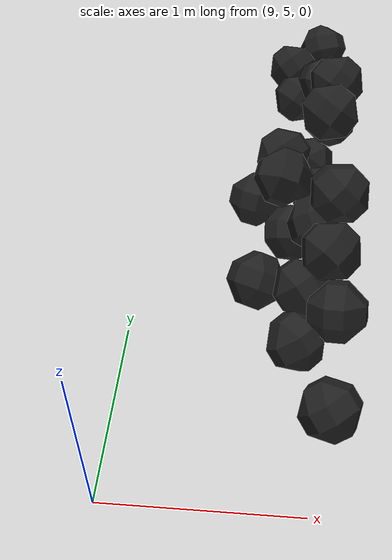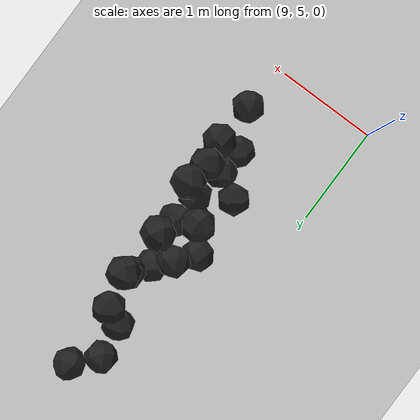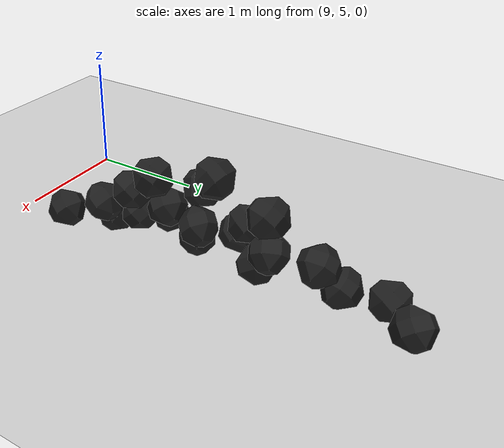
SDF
<sdf version="1.6">
 <world name="default">
  <model name="ground_plane">
   <static>1</static>
   <link name="link">
    <collision name="collision">
     <geometry><plane><normal>0 0 1</normal><size>100 100</size></plane></geometry>
     <surface><friction><ode><mu>100</mu><mu2>50</mu2></ode></friction></surface>
    </collision>
    <visual name="visual">
     <cast_shadows>0</cast_shadows>
     <geometry><plane><normal>0 0 1</normal><size>100 100</size></plane></geometry>
     <material>
      <script><uri>file://media/materials/scripts/gazebo.material</uri><name>Gazebo/Grey</name></script>
     </material>
    </visual>
   </link>
  </model>
  <model name="haoduomiantiaa_39">
   <link name="link_0">
    <inertial>
     <mass>0.2</mass>
     <inertia>
      <ixx>0.166667</ixx>
      <ixy>0</ixy>
      <ixz>0</ixz>
      <iyy>0.166667</iyy>
      <iyz>0</iyz>
      <izz>0.166667</izz>
     </inertia>
    </inertial>
    <visual name="visual">
     <geometry>
      <mesh>
       <uri>/home/oliver/catkin_ws/src/pudong_gazebo/world/stl/haoduomianti.stl</uri>
       <scale>1 1 1</scale>
      </mesh>
     </geometry>
     <material>
      <lighting>1</lighting>
      <script><uri>file://media/materials/scripts/gazebo.material</uri><name>Gazebo/Black</name></script>
      <shader type="pixel"><normal_map>__default__</normal_map></shader>
      <ambient>0.3 0.3 0.3 1</ambient>
      <diffuse>0.7 0.7 0.7 1</diffuse>
      <specular>0.01 0.01 0.01 1</specular>
      <emissive>0 0 0 1</emissive>
     </material>
    </visual>
    <collision name="collision">
     <geometry>
      <mesh>
       <uri>/home/oliver/catkin_ws/src/pudong_gazebo/world/stl/haoduomianti.stl</uri>
       <scale>1 1 1</scale>
      </mesh>
     </geometry>
     <surface>
      <friction>
       <ode><mu>1</mu><mu2>1</mu2><fdir1>0 0 0</fdir1><slip1>0</slip1><slip2>0</slip2></ode>
       <torsional>
        <coefficient>1</coefficient>
        <patch_radius>0</patch_radius>
        <surface_radius>0</surface_radius>
        <use_patch_radius>1</use_patch_radius>
        <ode><slip>0</slip></ode>
       </torsional>
      </friction>
      <bounce><restitution_coefficient>0</restitution_coefficient><threshold>1e+06</threshold></bounce>
      <contact>
       <collide_without_contact>0</collide_without_contact>
       <collide_without_contact_bitmask>1</collide_without_contact_bitmask>
       <collide_bitmask>1</collide_bitmask>
       <ode>
        <soft_cfm>0</soft_cfm>
        <soft_erp>0.2</soft_erp>
        <kp>1e+13</kp>
        <kd>1</kd>
        <max_vel>0.01</max_vel>
        <min_depth>0</min_depth>
       </ode>
       <bullet>
        <split_impulse>1</split_impulse>
        <split_impulse_penetration_threshold>-0.01</split_impulse_penetration_threshold>
        <soft_cfm>0</soft_cfm>
        <soft_erp>0.2</soft_erp>
        <kp>1e+13</kp>
        <kd>1</kd>
       </bullet>
      </contact>
     </surface>
    </collision>
   </link>
   <static>0</static>
   <pose>9.86405 6.10061 0.01397 0.733079 -0.285396 0.631794</pose>
  </model>
  <model name="haoduomiantiaa_45">
   <link name="link_0">
    <inertial>
     <mass>0.2</mass>
     <inertia>
      <ixx>0.166667</ixx>
      <ixy>0</ixy>
      <ixz>0</ixz>
      <iyy>0.166667</iyy>
      <iyz>0</iyz>
      <izz>0.166667</izz>
     </inertia>
    </inertial>
    <visual name="visual">
     <geometry>
      <mesh>
       <uri>/home/oliver/catkin_ws/src/pudong_gazebo/world/stl/haoduomianti.stl</uri>
       <scale>1 1 1</scale>
      </mesh>
     </geometry>
     <material>
      <lighting>1</lighting>
      <script><uri>file://media/materials/scripts/gazebo.material</uri><name>Gazebo/Black</name></script>
      <shader type="pixel"><normal_map>__default__</normal_map></shader>
      <ambient>0.3 0.3 0.3 1</ambient>
      <diffuse>0.7 0.7 0.7 1</diffuse>
      <specular>0.01 0.01 0.01 1</specular>
      <emissive>0 0 0 1</emissive>
     </material>
    </visual>
    <collision name="collision">
     <geometry>
      <mesh>
       <uri>/home/oliver/catkin_ws/src/pudong_gazebo/world/stl/haoduomianti.stl</uri>
       <scale>1 1 1</scale>
      </mesh>
     </geometry>
     <surface>
      <friction>
       <ode><mu>1</mu><mu2>1</mu2><fdir1>0 0 0</fdir1><slip1>0</slip1><slip2>0</slip2></ode>
       <torsional>
        <coefficient>1</coefficient>
        <patch_radius>0</patch_radius>
        <surface_radius>0</surface_radius>
        <use_patch_radius>1</use_patch_radius>
        <ode><slip>0</slip></ode>
       </torsional>
      </friction>
      <bounce><restitution_coefficient>0</restitution_coefficient><threshold>1e+06</threshold></bounce>
      <contact>
       <collide_without_contact>0</collide_without_contact>
       <collide_without_contact_bitmask>1</collide_without_contact_bitmask>
       <collide_bitmask>1</collide_bitmask>
       <ode>
        <soft_cfm>0</soft_cfm>
        <soft_erp>0.2</soft_erp>
        <kp>1e+13</kp>
        <kd>1</kd>
        <max_vel>0.01</max_vel>
        <min_depth>0</min_depth>
       </ode>
       <bullet>
        <split_impulse>1</split_impulse>
        <split_impulse_penetration_threshold>-0.01</split_impulse_penetration_threshold>
        <soft_cfm>0</soft_cfm>
        <soft_erp>0.2</soft_erp>
        <kp>1e+13</kp>
        <kd>1</kd>
       </bullet>
      </contact>
     </surface>
    </collision>
   </link>
   <static>0</static>
   <pose>10.0047 6.00648 -0.071473 -0.000701 -0.785178 2.42851</pose>
  </model>
  <model name="haoduomiantiaa_49">
   <link name="link_0">
    <inertial>
     <mass>0.2</mass>
     <inertia>
      <ixx>0.166667</ixx>
      <ixy>0</ixy>
      <ixz>0</ixz>
      <iyy>0.166667</iyy>
      <iyz>0</iyz>
      <izz>0.166667</izz>
     </inertia>
    </inertial>
    <visual name="visual">
     <geometry>
      <mesh>
       <uri>/home/oliver/catkin_ws/src/pudong_gazebo/world/stl/haoduomianti.stl</uri>
       <scale>1 1 1</scale>
      </mesh>
     </geometry>
     <material>
      <lighting>1</lighting>
      <script><uri>file://media/materials/scripts/gazebo.material</uri><name>Gazebo/Black</name></script>
      <shader type="pixel"><normal_map>__default__</normal_map></shader>
      <ambient>0.3 0.3 0.3 1</ambient>
      <diffuse>0.7 0.7 0.7 1</diffuse>
      <specular>0.01 0.01 0.01 1</specular>
      <emissive>0 0 0 1</emissive>
     </material>
    </visual>
    <collision name="collision">
     <geometry>
      <mesh>
       <uri>/home/oliver/catkin_ws/src/pudong_gazebo/world/stl/haoduomianti.stl</uri>
       <scale>1 1 1</scale>
      </mesh>
     </geometry>
     <surface>
      <friction>
       <ode><mu>1</mu><mu2>1</mu2><fdir1>0 0 0</fdir1><slip1>0</slip1><slip2>0</slip2></ode>
       <torsional>
        <coefficient>1</coefficient>
        <patch_radius>0</patch_radius>
        <surface_radius>0</surface_radius>
        <use_patch_radius>1</use_patch_radius>
        <ode><slip>0</slip></ode>
       </torsional>
      </friction>
      <bounce><restitution_coefficient>0</restitution_coefficient><threshold>1e+06</threshold></bounce>
      <contact>
       <collide_without_contact>0</collide_without_contact>
       <collide_without_contact_bitmask>1</collide_without_contact_bitmask>
       <collide_bitmask>1</collide_bitmask>
       <ode>
        <soft_cfm>0</soft_cfm>
        <soft_erp>0.2</soft_erp>
        <kp>1e+13</kp>
        <kd>1</kd>
        <max_vel>0.01</max_vel>
        <min_depth>0</min_depth>
       </ode>
       <bullet>
        <split_impulse>1</split_impulse>
        <split_impulse_penetration_threshold>-0.01</split_impulse_penetration_threshold>
        <soft_cfm>0</soft_cfm>
        <soft_erp>0.2</soft_erp>
        <kp>1e+13</kp>
        <kd>1</kd>
       </bullet>
      </contact>
     </surface>
    </collision>
   </link>
   <static>0</static>
   <pose>9.84175 6.66025 -0.114808 0.802266 -0.623145 -0.504268</pose>
  </model>
  <model name="haoduomiantiaa_53">
   <link name="link_0">
    <inertial>
     <mass>0.2</mass>
     <inertia>
      <ixx>0.166667</ixx>
      <ixy>0</ixy>
      <ixz>0</ixz>
      <iyy>0.166667</iyy>
      <iyz>0</iyz>
      <izz>0.166667</izz>
     </inertia>
    </inertial>
    <visual name="visual">
     <geometry>
      <mesh>
       <uri>/home/oliver/catkin_ws/src/pudong_gazebo/world/stl/haoduomianti.stl</uri>
       <scale>1 1 1</scale>
      </mesh>
     </geometry>
     <material>
      <lighting>1</lighting>
      <script><uri>file://media/materials/scripts/gazebo.material</uri><name>Gazebo/Black</name></script>
      <shader type="pixel"><normal_map>__default__</normal_map></shader>
      <ambient>0.3 0.3 0.3 1</ambient>
      <diffuse>0.7 0.7 0.7 1</diffuse>
      <specular>0.01 0.01 0.01 1</specular>
      <emissive>0 0 0 1</emissive>
     </material>
    </visual>
    <collision name="collision">
     <geometry>
      <mesh>
       <uri>/home/oliver/catkin_ws/src/pudong_gazebo/world/stl/haoduomianti.stl</uri>
       <scale>1 1 1</scale>
      </mesh>
     </geometry>
     <surface>
      <friction>
       <ode><mu>1</mu><mu2>1</mu2><fdir1>0 0 0</fdir1><slip1>0</slip1><slip2>0</slip2></ode>
       <torsional>
        <coefficient>1</coefficient>
        <patch_radius>0</patch_radius>
        <surface_radius>0</surface_radius>
        <use_patch_radius>1</use_patch_radius>
        <ode><slip>0</slip></ode>
       </torsional>
      </friction>
      <bounce><restitution_coefficient>0</restitution_coefficient><threshold>1e+06</threshold></bounce>
      <contact>
       <collide_without_contact>0</collide_without_contact>
       <collide_without_contact_bitmask>1</collide_without_contact_bitmask>
       <collide_bitmask>1</collide_bitmask>
       <ode>
        <soft_cfm>0</soft_cfm>
        <soft_erp>0.2</soft_erp>
        <kp>1e+13</kp>
        <kd>1</kd>
        <max_vel>0.01</max_vel>
        <min_depth>0</min_depth>
       </ode>
       <bullet>
        <split_impulse>1</split_impulse>
        <split_impulse_penetration_threshold>-0.01</split_impulse_penetration_threshold>
        <soft_cfm>0</soft_cfm>
        <soft_erp>0.2</soft_erp>
        <kp>1e+13</kp>
        <kd>1</kd>
       </bullet>
      </contact>
     </surface>
    </collision>
   </link>
   <static>0</static>
   <pose>10.0005 7.15317 -0.078627 0.160967 -0.729959 0.633986</pose>
  </model>
  <model name="haoduomiantiaa_57">
   <link name="link_0">
    <inertial>
     <mass>0.2</mass>
     <inertia>
      <ixx>0.166667</ixx>
      <ixy>0</ixy>
      <ixz>0</ixz>
      <iyy>0.166667</iyy>
      <iyz>0</iyz>
      <izz>0.166667</izz>
     </inertia>
    </inertial>
    <visual name="visual">
     <geometry>
      <mesh>
       <uri>/home/oliver/catkin_ws/src/pudong_gazebo/world/stl/haoduomianti.stl</uri>
       <scale>1 1 1</scale>
      </mesh>
     </geometry>
     <material>
      <lighting>1</lighting>
      <script><uri>file://media/materials/scripts/gazebo.material</uri><name>Gazebo/Black</name></script>
      <shader type="pixel"><normal_map>__default__</normal_map></shader>
      <ambient>0.3 0.3 0.3 1</ambient>
      <diffuse>0.7 0.7 0.7 1</diffuse>
      <specular>0.01 0.01 0.01 1</specular>
      <emissive>0 0 0 1</emissive>
     </material>
    </visual>
    <collision name="collision">
     <geometry>
      <mesh>
       <uri>/home/oliver/catkin_ws/src/pudong_gazebo/world/stl/haoduomianti.stl</uri>
       <scale>1 1 1</scale>
      </mesh>
     </geometry>
     <surface>
      <friction>
       <ode><mu>1</mu><mu2>1</mu2><fdir1>0 0 0</fdir1><slip1>0</slip1><slip2>0</slip2></ode>
       <torsional>
        <coefficient>1</coefficient>
        <patch_radius>0</patch_radius>
        <surface_radius>0</surface_radius>
        <use_patch_radius>1</use_patch_radius>
        <ode><slip>0</slip></ode>
       </torsional>
      </friction>
      <bounce><restitution_coefficient>0</restitution_coefficient><threshold>1e+06</threshold></bounce>
      <contact>
       <collide_without_contact>0</collide_without_contact>
       <collide_without_contact_bitmask>1</collide_without_contact_bitmask>
       <collide_bitmask>1</collide_bitmask>
       <ode>
        <soft_cfm>0</soft_cfm>
        <soft_erp>0.2</soft_erp>
        <kp>1e+13</kp>
        <kd>1</kd>
        <max_vel>0.01</max_vel>
        <min_depth>0</min_depth>
       </ode>
       <bullet>
        <split_impulse>1</split_impulse>
        <split_impulse_penetration_threshold>-0.01</split_impulse_penetration_threshold>
        <soft_cfm>0</soft_cfm>
        <soft_erp>0.2</soft_erp>
        <kp>1e+13</kp>
        <kd>1</kd>
       </bullet>
      </contact>
     </surface>
    </collision>
   </link>
   <static>0</static>
   <pose>9.98243 6.47335 0.167355 0.788763 -0.61556 -2.19122</pose>
  </model>
  <model name="haoduomiantiaa_60">
   <link name="link_0">
    <inertial>
     <mass>0.2</mass>
     <inertia>
      <ixx>0.166667</ixx>
      <ixy>0</ixy>
      <ixz>0</ixz>
      <iyy>0.166667</iyy>
      <iyz>0</iyz>
      <izz>0.166667</izz>
     </inertia>
    </inertial>
    <visual name="visual">
     <geometry>
      <mesh>
       <uri>/home/oliver/catkin_ws/src/pudong_gazebo/world/stl/haoduomianti.stl</uri>
       <scale>1 1 1</scale>
      </mesh>
     </geometry>
     <material>
      <lighting>1</lighting>
      <script><uri>file://media/materials/scripts/gazebo.material</uri><name>Gazebo/Black</name></script>
      <shader type="pixel"><normal_map>__default__</normal_map></shader>
      <ambient>0.3 0.3 0.3 1</ambient>
      <diffuse>0.7 0.7 0.7 1</diffuse>
      <specular>0.01 0.01 0.01 1</specular>
      <emissive>0 0 0 1</emissive>
     </material>
    </visual>
    <collision name="collision">
     <geometry>
      <mesh>
       <uri>/home/oliver/catkin_ws/src/pudong_gazebo/world/stl/haoduomianti.stl</uri>
       <scale>1 1 1</scale>
      </mesh>
     </geometry>
     <surface>
      <friction>
       <ode><mu>1</mu><mu2>1</mu2><fdir1>0 0 0</fdir1><slip1>0</slip1><slip2>0</slip2></ode>
       <torsional>
        <coefficient>1</coefficient>
        <patch_radius>0</patch_radius>
        <surface_radius>0</surface_radius>
        <use_patch_radius>1</use_patch_radius>
        <ode><slip>0</slip></ode>
       </torsional>
      </friction>
      <bounce><restitution_coefficient>0</restitution_coefficient><threshold>1e+06</threshold></bounce>
      <contact>
       <collide_without_contact>0</collide_without_contact>
       <collide_without_contact_bitmask>1</collide_without_contact_bitmask>
       <collide_bitmask>1</collide_bitmask>
       <ode>
        <soft_cfm>0</soft_cfm>
        <soft_erp>0.2</soft_erp>
        <kp>1e+13</kp>
        <kd>1</kd>
        <max_vel>0.01</max_vel>
        <min_depth>0</min_depth>
       </ode>
       <bullet>
        <split_impulse>1</split_impulse>
        <split_impulse_penetration_threshold>-0.01</split_impulse_penetration_threshold>
        <soft_cfm>0</soft_cfm>
        <soft_erp>0.2</soft_erp>
        <kp>1e+13</kp>
        <kd>1</kd>
       </bullet>
      </contact>
     </surface>
    </collision>
   </link>
   <static>0</static>
   <pose>9.78435 6.89679 -0.059027 0.631202 1.2e-05 2.83159</pose>
  </model>
  <model name="haoduomiantiaa_65">
   <link name="link_0">
    <inertial>
     <mass>0.2</mass>
     <inertia>
      <ixx>0.166667</ixx>
      <ixy>0</ixy>
      <ixz>0</ixz>
      <iyy>0.166667</iyy>
      <iyz>0</iyz>
      <izz>0.166667</izz>
     </inertia>
    </inertial>
    <visual name="visual">
     <geometry>
      <mesh>
       <uri>/home/oliver/catkin_ws/src/pudong_gazebo/world/stl/haoduomianti.stl</uri>
       <scale>1 1 1</scale>
      </mesh>
     </geometry>
     <material>
      <lighting>1</lighting>
      <script><uri>file://media/materials/scripts/gazebo.material</uri><name>Gazebo/Black</name></script>
      <shader type="pixel"><normal_map>__default__</normal_map></shader>
      <ambient>0.3 0.3 0.3 1</ambient>
      <diffuse>0.7 0.7 0.7 1</diffuse>
      <specular>0.01 0.01 0.01 1</specular>
      <emissive>0 0 0 1</emissive>
     </material>
    </visual>
    <collision name="collision">
     <geometry>
      <mesh>
       <uri>/home/oliver/catkin_ws/src/pudong_gazebo/world/stl/haoduomianti.stl</uri>
       <scale>1 1 1</scale>
      </mesh>
     </geometry>
     <surface>
      <friction>
       <ode><mu>1</mu><mu2>1</mu2><fdir1>0 0 0</fdir1><slip1>0</slip1><slip2>0</slip2></ode>
       <torsional>
        <coefficient>1</coefficient>
        <patch_radius>0</patch_radius>
        <surface_radius>0</surface_radius>
        <use_patch_radius>1</use_patch_radius>
        <ode><slip>0</slip></ode>
       </torsional>
      </friction>
      <bounce><restitution_coefficient>0</restitution_coefficient><threshold>1e+06</threshold></bounce>
      <contact>
       <collide_without_contact>0</collide_without_contact>
       <collide_without_contact_bitmask>1</collide_without_contact_bitmask>
       <collide_bitmask>1</collide_bitmask>
       <ode>
        <soft_cfm>0</soft_cfm>
        <soft_erp>0.2</soft_erp>
        <kp>1e+13</kp>
        <kd>1</kd>
        <max_vel>0.01</max_vel>
        <min_depth>0</min_depth>
       </ode>
       <bullet>
        <split_impulse>1</split_impulse>
        <split_impulse_penetration_threshold>-0.01</split_impulse_penetration_threshold>
        <soft_cfm>0</soft_cfm>
        <soft_erp>0.2</soft_erp>
        <kp>1e+13</kp>
        <kd>1</kd>
       </bullet>
      </contact>
     </surface>
    </collision>
   </link>
   <static>0</static>
   <pose>10.048 7.37475 0.120858 0.648752 -0.672262 -0.424089</pose>
  </model>
  <model name="haoduomiantiaa_78">
   <link name="link_0">
    <inertial>
     <mass>0.2</mass>
     <inertia>
      <ixx>0.166667</ixx>
      <ixy>0</ixy>
      <ixz>0</ixz>
      <iyy>0.166667</iyy>
      <iyz>0</iyz>
      <izz>0.166667</izz>
     </inertia>
    </inertial>
    <visual name="visual">
     <geometry>
      <mesh>
       <uri>/home/oliver/catkin_ws/src/pudong_gazebo/world/stl/haoduomianti.stl</uri>
       <scale>1 1 1</scale>
      </mesh>
     </geometry>
     <material>
      <lighting>1</lighting>
      <script><uri>file://media/materials/scripts/gazebo.material</uri><name>Gazebo/Black</name></script>
      <shader type="pixel"><normal_map>__default__</normal_map></shader>
      <ambient>0.3 0.3 0.3 1</ambient>
      <diffuse>0.7 0.7 0.7 1</diffuse>
      <specular>0.01 0.01 0.01 1</specular>
      <emissive>0 0 0 1</emissive>
     </material>
    </visual>
    <collision name="collision">
     <geometry>
      <mesh>
       <uri>/home/oliver/catkin_ws/src/pudong_gazebo/world/stl/haoduomianti.stl</uri>
       <scale>1 1 1</scale>
      </mesh>
     </geometry>
     <surface>
      <friction>
       <ode><mu>1</mu><mu2>1</mu2><fdir1>0 0 0</fdir1><slip1>0</slip1><slip2>0</slip2></ode>
       <torsional>
        <coefficient>1</coefficient>
        <patch_radius>0</patch_radius>
        <surface_radius>0</surface_radius>
        <use_patch_radius>1</use_patch_radius>
        <ode><slip>0</slip></ode>
       </torsional>
      </friction>
      <bounce><restitution_coefficient>0</restitution_coefficient><threshold>1e+06</threshold></bounce>
      <contact>
       <collide_without_contact>0</collide_without_contact>
       <collide_without_contact_bitmask>1</collide_without_contact_bitmask>
       <collide_bitmask>1</collide_bitmask>
       <ode>
        <soft_cfm>0</soft_cfm>
        <soft_erp>0.2</soft_erp>
        <kp>1e+13</kp>
        <kd>1</kd>
        <max_vel>0.01</max_vel>
        <min_depth>0</min_depth>
       </ode>
       <bullet>
        <split_impulse>1</split_impulse>
        <split_impulse_penetration_threshold>-0.01</split_impulse_penetration_threshold>
        <soft_cfm>0</soft_cfm>
        <soft_erp>0.2</soft_erp>
        <kp>1e+13</kp>
        <kd>1</kd>
       </bullet>
      </contact>
     </surface>
    </collision>
   </link>
   <static>0</static>
   <pose>9.67654 6.28663 -0.114789 0.765663 -0.624508 1.20213</pose>
  </model>
  <model name="haoduomiantiaa_81">
   <link name="link_0">
    <inertial>
     <mass>0.2</mass>
     <inertia>
      <ixx>0.166667</ixx>
      <ixy>0</ixy>
      <ixz>0</ixz>
      <iyy>0.166667</iyy>
      <iyz>0</iyz>
      <izz>0.166667</izz>
     </inertia>
    </inertial>
    <visual name="visual">
     <geometry>
      <mesh>
       <uri>/home/oliver/catkin_ws/src/pudong_gazebo/world/stl/haoduomianti.stl</uri>
       <scale>1 1 1</scale>
      </mesh>
     </geometry>
     <material>
      <lighting>1</lighting>
      <script><uri>file://media/materials/scripts/gazebo.material</uri><name>Gazebo/Black</name></script>
      <shader type="pixel"><normal_map>__default__</normal_map></shader>
      <ambient>0.3 0.3 0.3 1</ambient>
      <diffuse>0.7 0.7 0.7 1</diffuse>
      <specular>0.01 0.01 0.01 1</specular>
      <emissive>0 0 0 1</emissive>
     </material>
    </visual>
    <collision name="collision">
     <geometry>
      <mesh>
       <uri>/home/oliver/catkin_ws/src/pudong_gazebo/world/stl/haoduomianti.stl</uri>
       <scale>1 1 1</scale>
      </mesh>
     </geometry>
     <surface>
      <friction>
       <ode><mu>1</mu><mu2>1</mu2><fdir1>0 0 0</fdir1><slip1>0</slip1><slip2>0</slip2></ode>
       <torsional>
        <coefficient>1</coefficient>
        <patch_radius>0</patch_radius>
        <surface_radius>0</surface_radius>
        <use_patch_radius>1</use_patch_radius>
        <ode><slip>0</slip></ode>
       </torsional>
      </friction>
      <bounce><restitution_coefficient>0</restitution_coefficient><threshold>1e+06</threshold></bounce>
      <contact>
       <collide_without_contact>0</collide_without_contact>
       <collide_without_contact_bitmask>1</collide_without_contact_bitmask>
       <collide_bitmask>1</collide_bitmask>
       <ode>
        <soft_cfm>0</soft_cfm>
        <soft_erp>0.2</soft_erp>
        <kp>1e+13</kp>
        <kd>1</kd>
        <max_vel>0.01</max_vel>
        <min_depth>0</min_depth>
       </ode>
       <bullet>
        <split_impulse>1</split_impulse>
        <split_impulse_penetration_threshold>-0.01</split_impulse_penetration_threshold>
        <soft_cfm>0</soft_cfm>
        <soft_erp>0.2</soft_erp>
        <kp>1e+13</kp>
        <kd>1</kd>
       </bullet>
      </contact>
     </surface>
    </collision>
   </link>
   <static>0</static>
   <pose>9.97082 6.80943 0.097359 0.911112 -0.471267 -0.337828</pose>
  </model>
  <model name="haoduomiantiaa_104">
   <link name="link_0">
    <inertial>
     <mass>0.2</mass>
     <inertia>
      <ixx>0.166667</ixx>
      <ixy>0</ixy>
      <ixz>0</ixz>
      <iyy>0.166667</iyy>
      <iyz>0</iyz>
      <izz>0.166667</izz>
     </inertia>
    </inertial>
    <visual name="visual">
     <geometry>
      <mesh>
       <uri>/home/oliver/catkin_ws/src/pudong_gazebo/world/stl/haoduomianti.stl</uri>
       <scale>1 1 1</scale>
      </mesh>
     </geometry>
     <material>
      <lighting>1</lighting>
      <script><uri>file://media/materials/scripts/gazebo.material</uri><name>Gazebo/Black</name></script>
      <shader type="pixel"><normal_map>__default__</normal_map></shader>
      <ambient>0.3 0.3 0.3 1</ambient>
      <diffuse>0.7 0.7 0.7 1</diffuse>
      <specular>0.01 0.01 0.01 1</specular>
      <emissive>0 0 0 1</emissive>
     </material>
    </visual>
    <collision name="collision">
     <geometry>
      <mesh>
       <uri>/home/oliver/catkin_ws/src/pudong_gazebo/world/stl/haoduomianti.stl</uri>
       <scale>1 1 1</scale>
      </mesh>
     </geometry>
     <surface>
      <friction>
       <ode><mu>1</mu><mu2>1</mu2><fdir1>0 0 0</fdir1><slip1>0</slip1><slip2>0</slip2></ode>
       <torsional>
        <coefficient>1</coefficient>
        <patch_radius>0</patch_radius>
        <surface_radius>0</surface_radius>
        <use_patch_radius>1</use_patch_radius>
        <ode><slip>0</slip></ode>
       </torsional>
      </friction>
      <bounce><restitution_coefficient>0</restitution_coefficient><threshold>1e+06</threshold></bounce>
      <contact>
       <collide_without_contact>0</collide_without_contact>
       <collide_without_contact_bitmask>1</collide_without_contact_bitmask>
       <collide_bitmask>1</collide_bitmask>
       <ode>
        <soft_cfm>0</soft_cfm>
        <soft_erp>0.2</soft_erp>
        <kp>1e+13</kp>
        <kd>1</kd>
        <max_vel>0.01</max_vel>
        <min_depth>0</min_depth>
       </ode>
       <bullet>
        <split_impulse>1</split_impulse>
        <split_impulse_penetration_threshold>-0.01</split_impulse_penetration_threshold>
        <soft_cfm>0</soft_cfm>
        <soft_erp>0.2</soft_erp>
        <kp>1e+13</kp>
        <kd>1</kd>
       </bullet>
      </contact>
     </surface>
    </collision>
   </link>
   <static>0</static>
   <pose>9.98475 5.98944 0.133204 1.36466 -0.969514 1.62578</pose>
  </model>
  <model name="haoduomiantiaa_120">
   <link name="link_0">
    <inertial>
     <mass>0.2</mass>
     <inertia>
      <ixx>0.166667</ixx>
      <ixy>0</ixy>
      <ixz>0</ixz>
      <iyy>0.166667</iyy>
      <iyz>0</iyz>
      <izz>0.166667</izz>
     </inertia>
    </inertial>
    <visual name="visual">
     <geometry>
      <mesh>
       <uri>/home/oliver/catkin_ws/src/pudong_gazebo/world/stl/haoduomianti.stl</uri>
       <scale>1 1 1</scale>
      </mesh>
     </geometry>
     <material>
      <lighting>1</lighting>
      <script><uri>file://media/materials/scripts/gazebo.material</uri><name>Gazebo/Black</name></script>
      <shader type="pixel"><normal_map>__default__</normal_map></shader>
      <ambient>0.3 0.3 0.3 1</ambient>
      <diffuse>0.7 0.7 0.7 1</diffuse>
      <specular>0.01 0.01 0.01 1</specular>
      <emissive>0 0 0 1</emissive>
     </material>
    </visual>
    <collision name="collision">
     <geometry>
      <mesh>
       <uri>/home/oliver/catkin_ws/src/pudong_gazebo/world/stl/haoduomianti.stl</uri>
       <scale>1 1 1</scale>
      </mesh>
     </geometry>
     <surface>
      <friction>
       <ode><mu>1</mu><mu2>1</mu2><fdir1>0 0 0</fdir1><slip1>0</slip1><slip2>0</slip2></ode>
       <torsional>
        <coefficient>1</coefficient>
        <patch_radius>0</patch_radius>
        <surface_radius>0</surface_radius>
        <use_patch_radius>1</use_patch_radius>
        <ode><slip>0</slip></ode>
       </torsional>
      </friction>
      <bounce><restitution_coefficient>0</restitution_coefficient><threshold>1e+06</threshold></bounce>
      <contact>
       <collide_without_contact>0</collide_without_contact>
       <collide_without_contact_bitmask>1</collide_without_contact_bitmask>
       <collide_bitmask>1</collide_bitmask>
       <ode>
        <soft_cfm>0</soft_cfm>
        <soft_erp>0.2</soft_erp>
        <kp>1e+13</kp>
        <kd>1</kd>
        <max_vel>0.01</max_vel>
        <min_depth>0</min_depth>
       </ode>
       <bullet>
        <split_impulse>1</split_impulse>
        <split_impulse_penetration_threshold>-0.01</split_impulse_penetration_threshold>
        <soft_cfm>0</soft_cfm>
        <soft_erp>0.2</soft_erp>
        <kp>1e+13</kp>
        <kd>1</kd>
       </bullet>
      </contact>
     </surface>
    </collision>
   </link>
   <static>0</static>
   <pose>9.84356 7.89375 -0.115497 0.784731 -0.615792 0.816334</pose>
  </model>
  <model name="haoduomiantiaa_138">
   <link name="link_0">
    <inertial>
     <mass>0.2</mass>
     <inertia>
      <ixx>0.166667</ixx>
      <ixy>0</ixy>
      <ixz>0</ixz>
      <iyy>0.166667</iyy>
      <iyz>0</iyz>
      <izz>0.166667</izz>
     </inertia>
    </inertial>
    <visual name="visual">
     <geometry>
      <mesh>
       <uri>/home/oliver/catkin_ws/src/pudong_gazebo/world/stl/haoduomianti.stl</uri>
       <scale>1 1 1</scale>
      </mesh>
     </geometry>
     <material>
      <lighting>1</lighting>
      <script><uri>file://media/materials/scripts/gazebo.material</uri><name>Gazebo/Black</name></script>
      <shader type="pixel"><normal_map>__default__</normal_map></shader>
      <ambient>0.3 0.3 0.3 1</ambient>
      <diffuse>0.7 0.7 0.7 1</diffuse>
      <specular>0.01 0.01 0.01 1</specular>
      <emissive>0 0 0 1</emissive>
     </material>
    </visual>
    <collision name="collision">
     <geometry>
      <mesh>
       <uri>/home/oliver/catkin_ws/src/pudong_gazebo/world/stl/haoduomianti.stl</uri>
       <scale>1 1 1</scale>
      </mesh>
     </geometry>
     <surface>
      <friction>
       <ode><mu>1</mu><mu2>1</mu2><fdir1>0 0 0</fdir1><slip1>0</slip1><slip2>0</slip2></ode>
       <torsional>
        <coefficient>1</coefficient>
        <patch_radius>0</patch_radius>
        <surface_radius>0</surface_radius>
        <use_patch_radius>1</use_patch_radius>
        <ode><slip>0</slip></ode>
       </torsional>
      </friction>
      <bounce><restitution_coefficient>0</restitution_coefficient><threshold>1e+06</threshold></bounce>
      <contact>
       <collide_without_contact>0</collide_without_contact>
       <collide_without_contact_bitmask>1</collide_without_contact_bitmask>
       <collide_bitmask>1</collide_bitmask>
       <ode>
        <soft_cfm>0</soft_cfm>
        <soft_erp>0.2</soft_erp>
        <kp>1e+13</kp>
        <kd>1</kd>
        <max_vel>0.01</max_vel>
        <min_depth>0</min_depth>
       </ode>
       <bullet>
        <split_impulse>1</split_impulse>
        <split_impulse_penetration_threshold>-0.01</split_impulse_penetration_threshold>
        <soft_cfm>0</soft_cfm>
        <soft_erp>0.2</soft_erp>
        <kp>1e+13</kp>
        <kd>1</kd>
       </bullet>
      </contact>
     </surface>
    </collision>
   </link>
   <static>0</static>
   <pose>9.76282 7.07838 0.106078 0.833617 -0.658461 2.41472</pose>
  </model>
  <model name="haoduomiantiaa_141">
   <link name="link_0">
    <inertial>
     <mass>0.2</mass>
     <inertia>
      <ixx>0.166667</ixx>
      <ixy>0</ixy>
      <ixz>0</ixz>
      <iyy>0.166667</iyy>
      <iyz>0</iyz>
      <izz>0.166667</izz>
     </inertia>
    </inertial>
    <visual name="visual">
     <geometry>
      <mesh>
       <uri>/home/oliver/catkin_ws/src/pudong_gazebo/world/stl/haoduomianti.stl</uri>
       <scale>1 1 1</scale>
      </mesh>
     </geometry>
     <material>
      <lighting>1</lighting>
      <script><uri>file://media/materials/scripts/gazebo.material</uri><name>Gazebo/Black</name></script>
      <shader type="pixel"><normal_map>__default__</normal_map></shader>
      <ambient>0.3 0.3 0.3 1</ambient>
      <diffuse>0.7 0.7 0.7 1</diffuse>
      <specular>0.01 0.01 0.01 1</specular>
      <emissive>0 0 0 1</emissive>
     </material>
    </visual>
    <collision name="collision">
     <geometry>
      <mesh>
       <uri>/home/oliver/catkin_ws/src/pudong_gazebo/world/stl/haoduomianti.stl</uri>
       <scale>1 1 1</scale>
      </mesh>
     </geometry>
     <surface>
      <friction>
       <ode><mu>1</mu><mu2>1</mu2><fdir1>0 0 0</fdir1><slip1>0</slip1><slip2>0</slip2></ode>
       <torsional>
        <coefficient>1</coefficient>
        <patch_radius>0</patch_radius>
        <surface_radius>0</surface_radius>
        <use_patch_radius>1</use_patch_radius>
        <ode><slip>0</slip></ode>
       </torsional>
      </friction>
      <bounce><restitution_coefficient>0</restitution_coefficient><threshold>1e+06</threshold></bounce>
      <contact>
       <collide_without_contact>0</collide_without_contact>
       <collide_without_contact_bitmask>1</collide_without_contact_bitmask>
       <collide_bitmask>1</collide_bitmask>
       <ode>
        <soft_cfm>0</soft_cfm>
        <soft_erp>0.2</soft_erp>
        <kp>1e+13</kp>
        <kd>1</kd>
        <max_vel>0.01</max_vel>
        <min_depth>0</min_depth>
       </ode>
       <bullet>
        <split_impulse>1</split_impulse>
        <split_impulse_penetration_threshold>-0.01</split_impulse_penetration_threshold>
        <soft_cfm>0</soft_cfm>
        <soft_erp>0.2</soft_erp>
        <kp>1e+13</kp>
        <kd>1</kd>
       </bullet>
      </contact>
     </surface>
    </collision>
   </link>
   <static>0</static>
   <pose>9.79047 8.23765 -0.121883 0.786441 -0.615332 2.50362</pose>
  </model>
  <model name="haoduomiantiaa_151">
   <link name="link_0">
    <inertial>
     <mass>0.2</mass>
     <inertia>
      <ixx>0.166667</ixx>
      <ixy>0</ixy>
      <ixz>0</ixz>
      <iyy>0.166667</iyy>
      <iyz>0</iyz>
      <izz>0.166667</izz>
     </inertia>
    </inertial>
    <visual name="visual">
     <geometry>
      <mesh>
       <uri>/home/oliver/catkin_ws/src/pudong_gazebo/world/stl/haoduomianti.stl</uri>
       <scale>1 1 1</scale>
      </mesh>
     </geometry>
     <material>
      <lighting>1</lighting>
      <script><uri>file://media/materials/scripts/gazebo.material</uri><name>Gazebo/Black</name></script>
      <shader type="pixel"><normal_map>__default__</normal_map></shader>
      <ambient>0.3 0.3 0.3 1</ambient>
      <diffuse>0.7 0.7 0.7 1</diffuse>
      <specular>0.01 0.01 0.01 1</specular>
      <emissive>0 0 0 1</emissive>
     </material>
    </visual>
    <collision name="collision">
     <geometry>
      <mesh>
       <uri>/home/oliver/catkin_ws/src/pudong_gazebo/world/stl/haoduomianti.stl</uri>
       <scale>1 1 1</scale>
      </mesh>
     </geometry>
     <surface>
      <friction>
       <ode><mu>1</mu><mu2>1</mu2><fdir1>0 0 0</fdir1><slip1>0</slip1><slip2>0</slip2></ode>
       <torsional>
        <coefficient>1</coefficient>
        <patch_radius>0</patch_radius>
        <surface_radius>0</surface_radius>
        <use_patch_radius>1</use_patch_radius>
        <ode><slip>0</slip></ode>
       </torsional>
      </friction>
      <bounce><restitution_coefficient>0</restitution_coefficient><threshold>1e+06</threshold></bounce>
      <contact>
       <collide_without_contact>0</collide_without_contact>
       <collide_without_contact_bitmask>1</collide_without_contact_bitmask>
       <collide_bitmask>1</collide_bitmask>
       <ode>
        <soft_cfm>0</soft_cfm>
        <soft_erp>0.2</soft_erp>
        <kp>1e+13</kp>
        <kd>1</kd>
        <max_vel>0.01</max_vel>
        <min_depth>0</min_depth>
       </ode>
       <bullet>
        <split_impulse>1</split_impulse>
        <split_impulse_penetration_threshold>-0.01</split_impulse_penetration_threshold>
        <soft_cfm>0</soft_cfm>
        <soft_erp>0.2</soft_erp>
        <kp>1e+13</kp>
        <kd>1</kd>
       </bullet>
      </contact>
     </surface>
    </collision>
   </link>
   <static>0</static>
   <pose>10.0884 5.49326 -0.114342 0.786959 -0.615812 -1.87983</pose>
  </model>
  <model name="haoduomiantiaa_156">
   <link name="link_0">
    <inertial>
     <mass>0.2</mass>
     <inertia>
      <ixx>0.166667</ixx>
      <ixy>0</ixy>
      <ixz>0</ixz>
      <iyy>0.166667</iyy>
      <iyz>0</iyz>
      <izz>0.166667</izz>
     </inertia>
    </inertial>
    <visual name="visual">
     <geometry>
      <mesh>
       <uri>/home/oliver/catkin_ws/src/pudong_gazebo/world/stl/haoduomianti.stl</uri>
       <scale>1 1 1</scale>
      </mesh>
     </geometry>
     <material>
      <lighting>1</lighting>
      <script><uri>file://media/materials/scripts/gazebo.material</uri><name>Gazebo/Black</name></script>
      <shader type="pixel"><normal_map>__default__</normal_map></shader>
      <ambient>0.3 0.3 0.3 1</ambient>
      <diffuse>0.7 0.7 0.7 1</diffuse>
      <specular>0.01 0.01 0.01 1</specular>
      <emissive>0 0 0 1</emissive>
     </material>
    </visual>
    <collision name="collision">
     <geometry>
      <mesh>
       <uri>/home/oliver/catkin_ws/src/pudong_gazebo/world/stl/haoduomianti.stl</uri>
       <scale>1 1 1</scale>
      </mesh>
     </geometry>
     <surface>
      <friction>
       <ode><mu>1</mu><mu2>1</mu2><fdir1>0 0 0</fdir1><slip1>0</slip1><slip2>0</slip2></ode>
       <torsional>
        <coefficient>1</coefficient>
        <patch_radius>0</patch_radius>
        <surface_radius>0</surface_radius>
        <use_patch_radius>1</use_patch_radius>
        <ode><slip>0</slip></ode>
       </torsional>
      </friction>
      <bounce><restitution_coefficient>0</restitution_coefficient><threshold>1e+06</threshold></bounce>
      <contact>
       <collide_without_contact>0</collide_without_contact>
       <collide_without_contact_bitmask>1</collide_without_contact_bitmask>
       <collide_bitmask>1</collide_bitmask>
       <ode>
        <soft_cfm>0</soft_cfm>
        <soft_erp>0.2</soft_erp>
        <kp>1e+13</kp>
        <kd>1</kd>
        <max_vel>0.01</max_vel>
        <min_depth>0</min_depth>
       </ode>
       <bullet>
        <split_impulse>1</split_impulse>
        <split_impulse_penetration_threshold>-0.01</split_impulse_penetration_threshold>
        <soft_cfm>0</soft_cfm>
        <soft_erp>0.2</soft_erp>
        <kp>1e+13</kp>
        <kd>1</kd>
       </bullet>
      </contact>
     </surface>
    </collision>
   </link>
   <static>0</static>
   <pose>10.0762 6.91921 0.570203 0.586961 -0.755084 0.682317</pose>
  </model>
  <model name="haoduomiantiaa_165">
   <link name="link_0">
    <inertial>
     <mass>0.2</mass>
     <inertia>
      <ixx>0.166667</ixx>
      <ixy>0</ixy>
      <ixz>0</ixz>
      <iyy>0.166667</iyy>
      <iyz>0</iyz>
      <izz>0.166667</izz>
     </inertia>
    </inertial>
    <visual name="visual">
     <geometry>
      <mesh>
       <uri>/home/oliver/catkin_ws/src/pudong_gazebo/world/stl/haoduomianti.stl</uri>
       <scale>1 1 1</scale>
      </mesh>
     </geometry>
     <material>
      <lighting>1</lighting>
      <script><uri>file://media/materials/scripts/gazebo.material</uri><name>Gazebo/Black</name></script>
      <shader type="pixel"><normal_map>__default__</normal_map></shader>
      <ambient>0.3 0.3 0.3 1</ambient>
      <diffuse>0.7 0.7 0.7 1</diffuse>
      <specular>0.01 0.01 0.01 1</specular>
      <emissive>0 0 0 1</emissive>
     </material>
    </visual>
    <collision name="collision">
     <geometry>
      <mesh>
       <uri>/home/oliver/catkin_ws/src/pudong_gazebo/world/stl/haoduomianti.stl</uri>
       <scale>1 1 1</scale>
      </mesh>
     </geometry>
     <surface>
      <friction>
       <ode><mu>1</mu><mu2>1</mu2><fdir1>0 0 0</fdir1><slip1>0</slip1><slip2>0</slip2></ode>
       <torsional>
        <coefficient>1</coefficient>
        <patch_radius>0</patch_radius>
        <surface_radius>0</surface_radius>
        <use_patch_radius>1</use_patch_radius>
        <ode><slip>0</slip></ode>
       </torsional>
      </friction>
      <bounce><restitution_coefficient>0</restitution_coefficient><threshold>1e+06</threshold></bounce>
      <contact>
       <collide_without_contact>0</collide_without_contact>
       <collide_without_contact_bitmask>1</collide_without_contact_bitmask>
       <collide_bitmask>1</collide_bitmask>
       <ode>
        <soft_cfm>0</soft_cfm>
        <soft_erp>0.2</soft_erp>
        <kp>1e+13</kp>
        <kd>1</kd>
        <max_vel>0.01</max_vel>
        <min_depth>0</min_depth>
       </ode>
       <bullet>
        <split_impulse>1</split_impulse>
        <split_impulse_penetration_threshold>-0.01</split_impulse_penetration_threshold>
        <soft_cfm>0</soft_cfm>
        <soft_erp>0.2</soft_erp>
        <kp>1e+13</kp>
        <kd>1</kd>
       </bullet>
      </contact>
     </surface>
    </collision>
   </link>
   <static>0</static>
   <pose>10.0637 7.38576 0.413287 0.83451 -0.600822 2.80713</pose>
  </model>
  <model name="haoduomiantiaa_178">
   <link name="link_0">
    <inertial>
     <mass>0.2</mass>
     <inertia>
      <ixx>0.166667</ixx>
      <ixy>0</ixy>
      <ixz>0</ixz>
      <iyy>0.166667</iyy>
      <iyz>0</iyz>
      <izz>0.166667</izz>
     </inertia>
    </inertial>
    <visual name="visual">
     <geometry>
      <mesh>
       <uri>/home/oliver/catkin_ws/src/pudong_gazebo/world/stl/haoduomianti.stl</uri>
       <scale>1 1 1</scale>
      </mesh>
     </geometry>
     <material>
      <lighting>1</lighting>
      <script><uri>file://media/materials/scripts/gazebo.material</uri><name>Gazebo/Black</name></script>
      <shader type="pixel"><normal_map>__default__</normal_map></shader>
      <ambient>0.3 0.3 0.3 1</ambient>
      <diffuse>0.7 0.7 0.7 1</diffuse>
      <specular>0.01 0.01 0.01 1</specular>
      <emissive>0 0 0 1</emissive>
     </material>
    </visual>
    <collision name="collision">
     <geometry>
      <mesh>
       <uri>/home/oliver/catkin_ws/src/pudong_gazebo/world/stl/haoduomianti.stl</uri>
       <scale>1 1 1</scale>
      </mesh>
     </geometry>
     <surface>
      <friction>
       <ode><mu>1</mu><mu2>1</mu2><fdir1>0 0 0</fdir1><slip1>0</slip1><slip2>0</slip2></ode>
       <torsional>
        <coefficient>1</coefficient>
        <patch_radius>0</patch_radius>
        <surface_radius>0</surface_radius>
        <use_patch_radius>1</use_patch_radius>
        <ode><slip>0</slip></ode>
       </torsional>
      </friction>
      <bounce><restitution_coefficient>0</restitution_coefficient><threshold>1e+06</threshold></bounce>
      <contact>
       <collide_without_contact>0</collide_without_contact>
       <collide_without_contact_bitmask>1</collide_without_contact_bitmask>
       <collide_bitmask>1</collide_bitmask>
       <ode>
        <soft_cfm>0</soft_cfm>
        <soft_erp>0.2</soft_erp>
        <kp>1e+13</kp>
        <kd>1</kd>
        <max_vel>0.01</max_vel>
        <min_depth>0</min_depth>
       </ode>
       <bullet>
        <split_impulse>1</split_impulse>
        <split_impulse_penetration_threshold>-0.01</split_impulse_penetration_threshold>
        <soft_cfm>0</soft_cfm>
        <soft_erp>0.2</soft_erp>
        <kp>1e+13</kp>
        <kd>1</kd>
       </bullet>
      </contact>
     </surface>
    </collision>
   </link>
   <static>0</static>
   <pose>9.99521 8.4691 -0.11547 0.785398 -0.615478 -0.190274</pose>
  </model>
  <model name="haoduomiantiaa_182">
   <link name="link_0">
    <inertial>
     <mass>0.2</mass>
     <inertia>
      <ixx>0.166667</ixx>
      <ixy>0</ixy>
      <ixz>0</ixz>
      <iyy>0.166667</iyy>
      <iyz>0</iyz>
      <izz>0.166667</izz>
     </inertia>
    </inertial>
    <visual name="visual">
     <geometry>
      <mesh>
       <uri>/home/oliver/catkin_ws/src/pudong_gazebo/world/stl/haoduomianti.stl</uri>
       <scale>1 1 1</scale>
      </mesh>
     </geometry>
     <material>
      <lighting>1</lighting>
      <script><uri>file://media/materials/scripts/gazebo.material</uri><name>Gazebo/Black</name></script>
      <shader type="pixel"><normal_map>__default__</normal_map></shader>
      <ambient>0.3 0.3 0.3 1</ambient>
      <diffuse>0.7 0.7 0.7 1</diffuse>
      <specular>0.01 0.01 0.01 1</specular>
      <emissive>0 0 0 1</emissive>
     </material>
    </visual>
    <collision name="collision">
     <geometry>
      <mesh>
       <uri>/home/oliver/catkin_ws/src/pudong_gazebo/world/stl/haoduomianti.stl</uri>
       <scale>1 1 1</scale>
      </mesh>
     </geometry>
     <surface>
      <friction>
       <ode><mu>1</mu><mu2>1</mu2><fdir1>0 0 0</fdir1><slip1>0</slip1><slip2>0</slip2></ode>
       <torsional>
        <coefficient>1</coefficient>
        <patch_radius>0</patch_radius>
        <surface_radius>0</surface_radius>
        <use_patch_radius>1</use_patch_radius>
        <ode><slip>0</slip></ode>
       </torsional>
      </friction>
      <bounce><restitution_coefficient>0</restitution_coefficient><threshold>1e+06</threshold></bounce>
      <contact>
       <collide_without_contact>0</collide_without_contact>
       <collide_without_contact_bitmask>1</collide_without_contact_bitmask>
       <collide_bitmask>1</collide_bitmask>
       <ode>
        <soft_cfm>0</soft_cfm>
        <soft_erp>0.2</soft_erp>
        <kp>1e+13</kp>
        <kd>1</kd>
        <max_vel>0.01</max_vel>
        <min_depth>0</min_depth>
       </ode>
       <bullet>
        <split_impulse>1</split_impulse>
        <split_impulse_penetration_threshold>-0.01</split_impulse_penetration_threshold>
        <soft_cfm>0</soft_cfm>
        <soft_erp>0.2</soft_erp>
        <kp>1e+13</kp>
        <kd>1</kd>
       </bullet>
      </contact>
     </surface>
    </collision>
   </link>
   <static>0</static>
   <pose>10.045 6.13619 0.270401 1.03428 -0.582701 2.67349</pose>
  </model>
  <model name="haoduomiantiaa_189">
   <link name="link_0">
    <inertial>
     <mass>0.2</mass>
     <inertia>
      <ixx>0.166667</ixx>
      <ixy>0</ixy>
      <ixz>0</ixz>
      <iyy>0.166667</iyy>
      <iyz>0</iyz>
      <izz>0.166667</izz>
     </inertia>
    </inertial>
    <visual name="visual">
     <geometry>
      <mesh>
       <uri>/home/oliver/catkin_ws/src/pudong_gazebo/world/stl/haoduomianti.stl</uri>
       <scale>1 1 1</scale>
      </mesh>
     </geometry>
     <material>
      <lighting>1</lighting>
      <script><uri>file://media/materials/scripts/gazebo.material</uri><name>Gazebo/Black</name></script>
      <shader type="pixel"><normal_map>__default__</normal_map></shader>
      <ambient>0.3 0.3 0.3 1</ambient>
      <diffuse>0.7 0.7 0.7 1</diffuse>
      <specular>0.01 0.01 0.01 1</specular>
      <emissive>0 0 0 1</emissive>
     </material>
    </visual>
    <collision name="collision">
     <geometry>
      <mesh>
       <uri>/home/oliver/catkin_ws/src/pudong_gazebo/world/stl/haoduomianti.stl</uri>
       <scale>1 1 1</scale>
      </mesh>
     </geometry>
     <surface>
      <friction>
       <ode><mu>1</mu><mu2>1</mu2><fdir1>0 0 0</fdir1><slip1>0</slip1><slip2>0</slip2></ode>
       <torsional>
        <coefficient>1</coefficient>
        <patch_radius>0</patch_radius>
        <surface_radius>0</surface_radius>
        <use_patch_radius>1</use_patch_radius>
        <ode><slip>0</slip></ode>
       </torsional>
      </friction>
      <bounce><restitution_coefficient>0</restitution_coefficient><threshold>1e+06</threshold></bounce>
      <contact>
       <collide_without_contact>0</collide_without_contact>
       <collide_without_contact_bitmask>1</collide_without_contact_bitmask>
       <collide_bitmask>1</collide_bitmask>
       <ode>
        <soft_cfm>0</soft_cfm>
        <soft_erp>0.2</soft_erp>
        <kp>1e+13</kp>
        <kd>1</kd>
        <max_vel>0.01</max_vel>
        <min_depth>0</min_depth>
       </ode>
       <bullet>
        <split_impulse>1</split_impulse>
        <split_impulse_penetration_threshold>-0.01</split_impulse_penetration_threshold>
        <soft_cfm>0</soft_cfm>
        <soft_erp>0.2</soft_erp>
        <kp>1e+13</kp>
        <kd>1</kd>
       </bullet>
      </contact>
     </surface>
    </collision>
   </link>
   <static>0</static>
   <pose>10.0157 7.76688 0.119529 0.824613 -0.558134 -3.08209</pose>
  </model>
  <model name="haoduomiantiaa_193">
   <link name="link_0">
    <inertial>
     <mass>0.2</mass>
     <inertia>
      <ixx>0.166667</ixx>
      <ixy>0</ixy>
      <ixz>0</ixz>
      <iyy>0.166667</iyy>
      <iyz>0</iyz>
      <izz>0.166667</izz>
     </inertia>
    </inertial>
    <visual name="visual">
     <geometry>
      <mesh>
       <uri>/home/oliver/catkin_ws/src/pudong_gazebo/world/stl/haoduomianti.stl</uri>
       <scale>1 1 1</scale>
      </mesh>
     </geometry>
     <material>
      <lighting>1</lighting>
      <script><uri>file://media/materials/scripts/gazebo.material</uri><name>Gazebo/Black</name></script>
      <shader type="pixel"><normal_map>__default__</normal_map></shader>
      <ambient>0.3 0.3 0.3 1</ambient>
      <diffuse>0.7 0.7 0.7 1</diffuse>
      <specular>0.01 0.01 0.01 1</specular>
      <emissive>0 0 0 1</emissive>
     </material>
    </visual>
    <collision name="collision">
     <geometry>
      <mesh>
       <uri>/home/oliver/catkin_ws/src/pudong_gazebo/world/stl/haoduomianti.stl</uri>
       <scale>1 1 1</scale>
      </mesh>
     </geometry>
     <surface>
      <friction>
       <ode><mu>1</mu><mu2>1</mu2><fdir1>0 0 0</fdir1><slip1>0</slip1><slip2>0</slip2></ode>
       <torsional>
        <coefficient>1</coefficient>
        <patch_radius>0</patch_radius>
        <surface_radius>0</surface_radius>
        <use_patch_radius>1</use_patch_radius>
        <ode><slip>0</slip></ode>
       </torsional>
      </friction>
      <bounce><restitution_coefficient>0</restitution_coefficient><threshold>1e+06</threshold></bounce>
      <contact>
       <collide_without_contact>0</collide_without_contact>
       <collide_without_contact_bitmask>1</collide_without_contact_bitmask>
       <collide_bitmask>1</collide_bitmask>
       <ode>
        <soft_cfm>0</soft_cfm>
        <soft_erp>0.2</soft_erp>
        <kp>1e+13</kp>
        <kd>1</kd>
        <max_vel>0.01</max_vel>
        <min_depth>0</min_depth>
       </ode>
       <bullet>
        <split_impulse>1</split_impulse>
        <split_impulse_penetration_threshold>-0.01</split_impulse_penetration_threshold>
        <soft_cfm>0</soft_cfm>
        <soft_erp>0.2</soft_erp>
        <kp>1e+13</kp>
        <kd>1</kd>
       </bullet>
      </contact>
     </surface>
    </collision>
   </link>
   <static>0</static>
   <pose>9.85234 6.62104 0.316852 0.441346 -0.495613 1.31922</pose>
  </model>
  <model name="haoduomiantiaa_195">
   <link name="link_0">
    <inertial>
     <mass>0.2</mass>
     <inertia>
      <ixx>0.166667</ixx>
      <ixy>0</ixy>
      <ixz>0</ixz>
      <iyy>0.166667</iyy>
      <iyz>0</iyz>
      <izz>0.166667</izz>
     </inertia>
    </inertial>
    <visual name="visual">
     <geometry>
      <mesh>
       <uri>/home/oliver/catkin_ws/src/pudong_gazebo/world/stl/haoduomianti.stl</uri>
       <scale>1 1 1</scale>
      </mesh>
     </geometry>
     <material>
      <lighting>1</lighting>
      <script><uri>file://media/materials/scripts/gazebo.material</uri><name>Gazebo/Black</name></script>
      <shader type="pixel"><normal_map>__default__</normal_map></shader>
      <ambient>0.3 0.3 0.3 1</ambient>
      <diffuse>0.7 0.7 0.7 1</diffuse>
      <specular>0.01 0.01 0.01 1</specular>
      <emissive>0 0 0 1</emissive>
     </material>
    </visual>
    <collision name="collision">
     <geometry>
      <mesh>
       <uri>/home/oliver/catkin_ws/src/pudong_gazebo/world/stl/haoduomianti.stl</uri>
       <scale>1 1 1</scale>
      </mesh>
     </geometry>
     <surface>
      <friction>
       <ode><mu>1</mu><mu2>1</mu2><fdir1>0 0 0</fdir1><slip1>0</slip1><slip2>0</slip2></ode>
       <torsional>
        <coefficient>1</coefficient>
        <patch_radius>0</patch_radius>
        <surface_radius>0</surface_radius>
        <use_patch_radius>1</use_patch_radius>
        <ode><slip>0</slip></ode>
       </torsional>
      </friction>
      <bounce><restitution_coefficient>0</restitution_coefficient><threshold>1e+06</threshold></bounce>
      <contact>
       <collide_without_contact>0</collide_without_contact>
       <collide_without_contact_bitmask>1</collide_without_contact_bitmask>
       <collide_bitmask>1</collide_bitmask>
       <ode>
        <soft_cfm>0</soft_cfm>
        <soft_erp>0.2</soft_erp>
        <kp>1e+13</kp>
        <kd>1</kd>
        <max_vel>0.01</max_vel>
        <min_depth>0</min_depth>
       </ode>
       <bullet>
        <split_impulse>1</split_impulse>
        <split_impulse_penetration_threshold>-0.01</split_impulse_penetration_threshold>
        <soft_cfm>0</soft_cfm>
        <soft_erp>0.2</soft_erp>
        <kp>1e+13</kp>
        <kd>1</kd>
       </bullet>
      </contact>
     </surface>
    </collision>
   </link>
   <static>0</static>
   <pose>10.0663 6.44963 0.453298 0.717552 -0.500337 -1.39448</pose>
  </model>
 </world>
</sdf>
